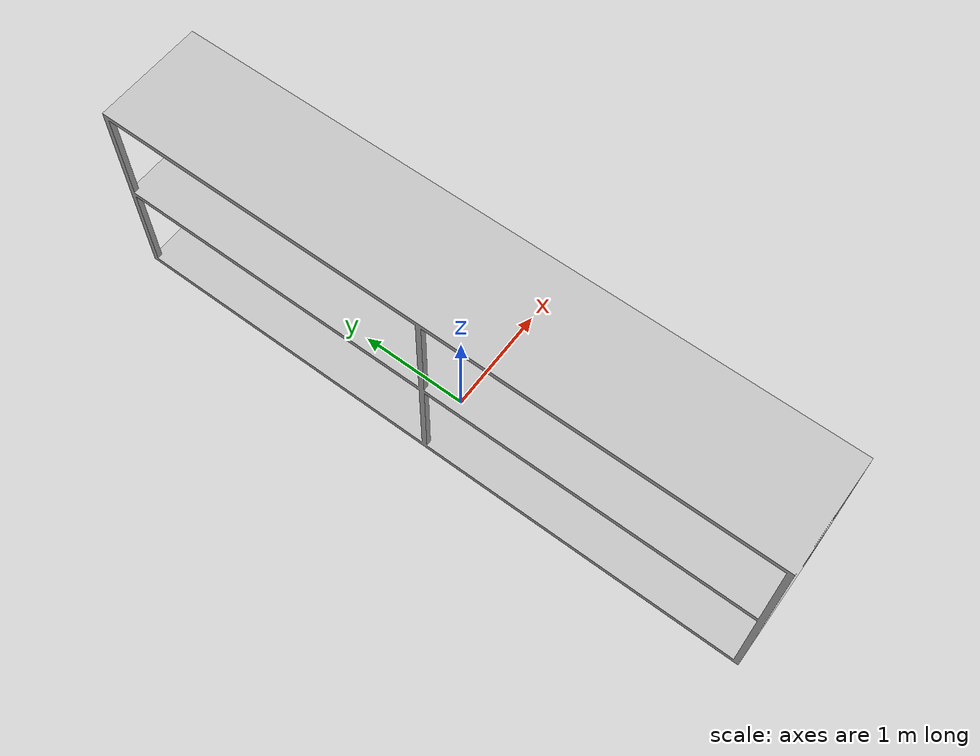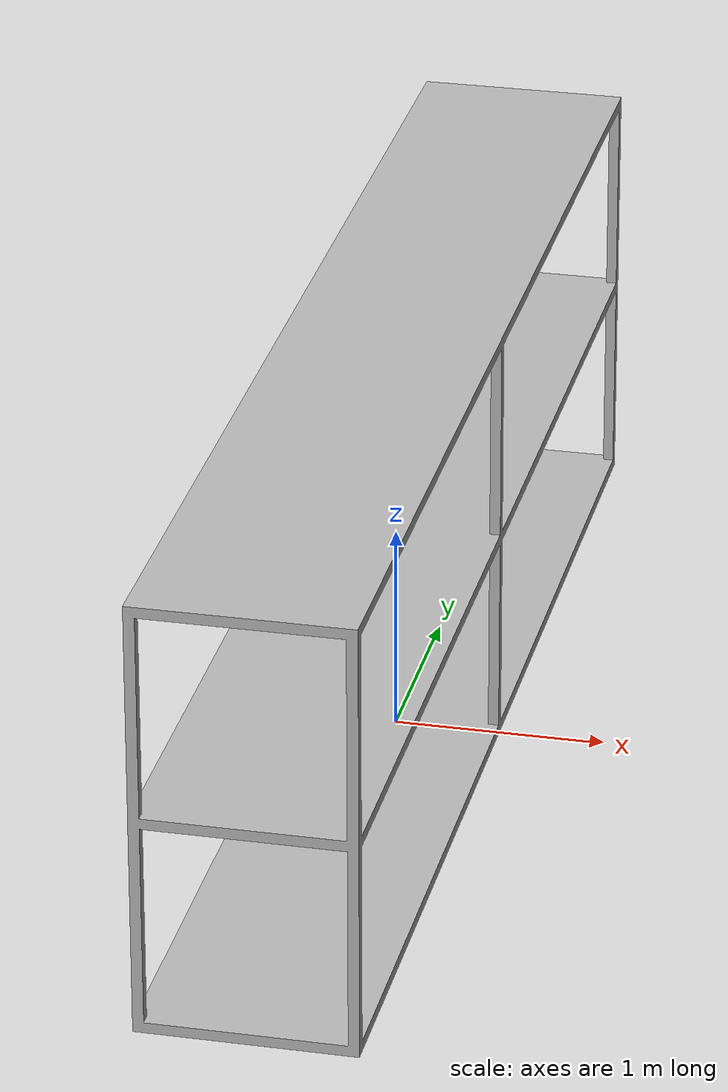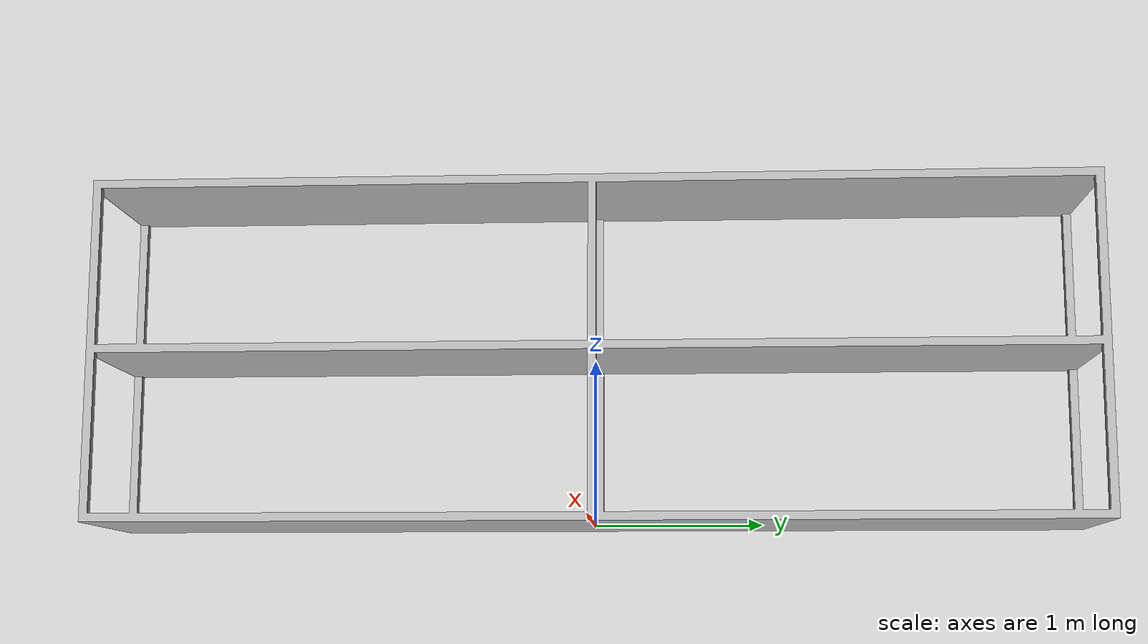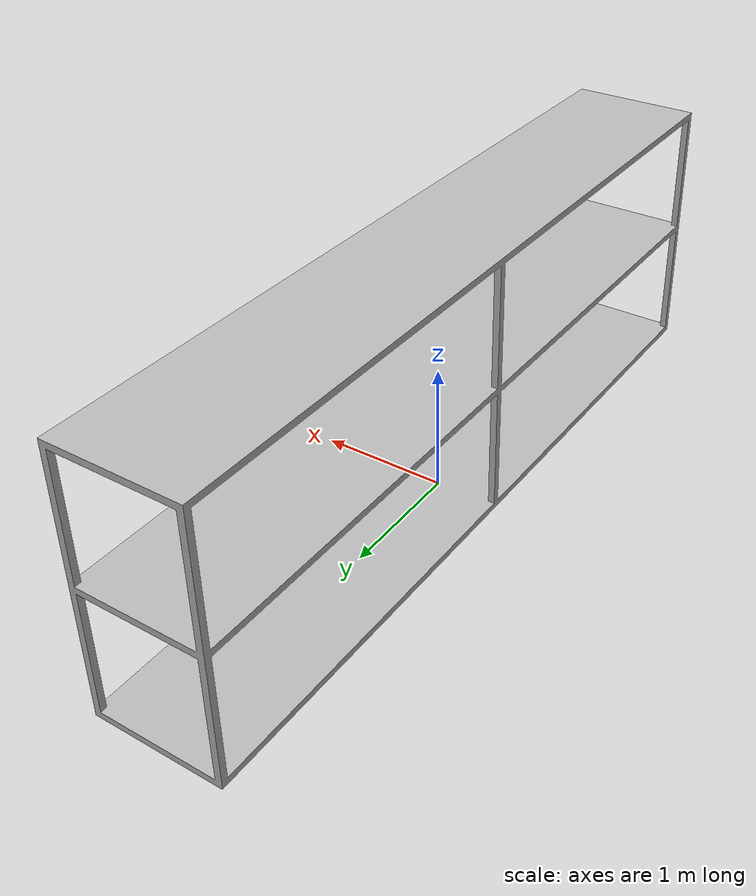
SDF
<?xml version="1.0" ?>
<sdf version="1.5">
  <model name="Rack">
    <pose>0 0 0 0 0 0</pose>
    <static>true</static>
    <link name="link">
      <inertial>
        <mass>0.1</mass>
        <inertia>
          <ixx>1</ixx>
          <ixy>0</ixy>
          <ixz>0</ixz>
          <iyy>1</iyy>
          <iyz>0</iyz>
          <izz>1</izz>
        </inertia>
      </inertial>
      <collision name="collision">
        <geometry>
          <mesh>
            <uri>model://gardener_rack/meshes/rack.dae</uri>
          </mesh>
        </geometry>
        <surface>
          <contact>
            <ode>
              <max_vel>0.1</max_vel>
              <min_depth>0.001</min_depth>
            </ode>
          </contact>
        </surface>
      </collision>
      <visual name="visual">
        <geometry>
          <mesh>
            <uri>model://gardener_rack/meshes/rack.dae</uri>
          </mesh>
        </geometry>
      </visual>
    </link>
  </model>
</sdf>
